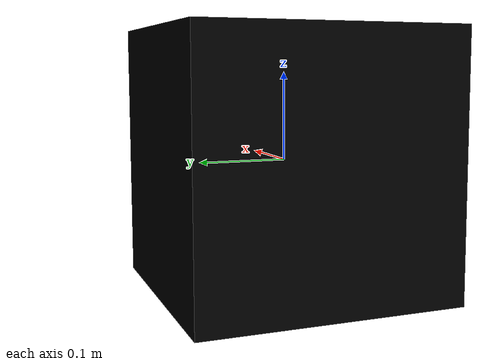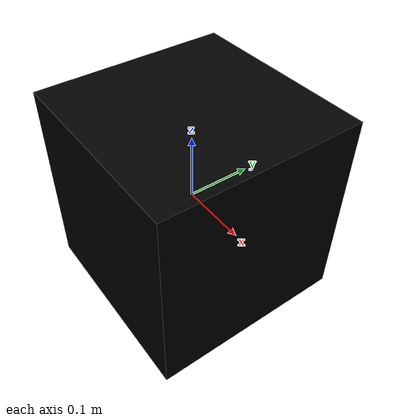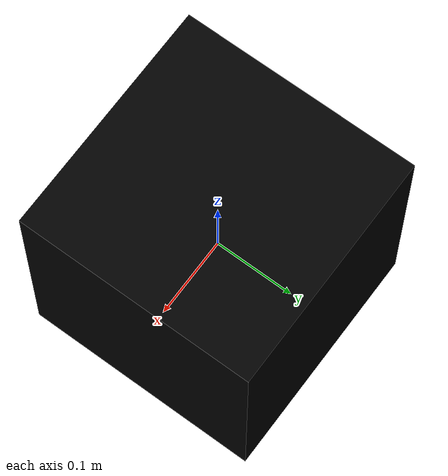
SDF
<?xml version='1.0'?>
<sdf version='1.7'>
  <model name='cardboard_box_modified'>
    <link name='link'>
      <inertial>
        <mass>2</mass>
        <inertia>
          <ixx>0.0416667</ixx>
          <ixy>0</ixy>
          <ixz>0</ixz>
          <iyy>0.0566667</iyy>
          <iyz>0</iyz>
          <izz>0.0683333</izz>
        </inertia>
        <pose>0 0 0 0 -0 0</pose>
      </inertial>
      <self_collide>0</self_collide>
      <enable_wind>0</enable_wind>
      <kinematic>0</kinematic>
      <pose>0 0 0 0 -0 0</pose>
      <gravity>1</gravity>
      <visual name='visual'>
        <pose>0 0 -0.15 0 -0 0</pose>
        <geometry>
          <mesh>
            <uri>model://cardboard_box/meshes/cardboard_box.dae</uri>
            <scale>0.75 0.75 0.755591</scale>
          </mesh>
        </geometry>
        <material>
          <shader type='pixel'>
            <normal_map>__default__</normal_map>
          </shader>
          <script>
            <name>ModelPreview_8::link::visual_MATERIAL_</name>
          </script>
          <ambient>0 0 0 1</ambient>
          <diffuse>0 0 0 1</diffuse>
          <specular>0 0 0 1</specular>
          <emissive>0 0 0 1</emissive>
        </material>
        <transparency>0</transparency>
        <cast_shadows>1</cast_shadows>
      </visual>
      <collision name='collision'>
        <laser_retro>0</laser_retro>
        <max_contacts>10</max_contacts>
        <pose>0 0 0 0 -0 0</pose>
        <geometry>
          <box>
            <size>0.5 0.4 0.3</size>
          </box>
        </geometry>
        <surface>
          <friction>
            <ode>
              <mu>1</mu>
              <mu2>1</mu2>
              <fdir1>0 0 0</fdir1>
              <slip1>0</slip1>
              <slip2>0</slip2>
            </ode>
            <torsional>
              <coefficient>1</coefficient>
              <patch_radius>0</patch_radius>
              <surface_radius>0</surface_radius>
              <use_patch_radius>1</use_patch_radius>
              <ode>
                <slip>0</slip>
              </ode>
            </torsional>
          </friction>
          <bounce>
            <restitution_coefficient>0</restitution_coefficient>
            <threshold>1e+06</threshold>
          </bounce>
          <contact>
            <collide_without_contact>0</collide_without_contact>
            <collide_without_contact_bitmask>1</collide_without_contact_bitmask>
            <collide_bitmask>1</collide_bitmask>
            <ode>
              <soft_cfm>0</soft_cfm>
              <soft_erp>0.2</soft_erp>
              <kp>1e+07</kp>
              <kd>1</kd>
              <max_vel>0.1</max_vel>
              <min_depth>0.001</min_depth>
            </ode>
            <bullet>
              <split_impulse>1</split_impulse>
              <split_impulse_penetration_threshold>-0.01</split_impulse_penetration_threshold>
              <soft_cfm>0</soft_cfm>
              <soft_erp>0.2</soft_erp>
              <kp>1e+07</kp>
              <kd>1</kd>
            </bullet>
          </contact>
        </surface>
      </collision>
    </link>
    <static>0</static>
    <allow_auto_disable>1</allow_auto_disable>
  </model>
</sdf>
